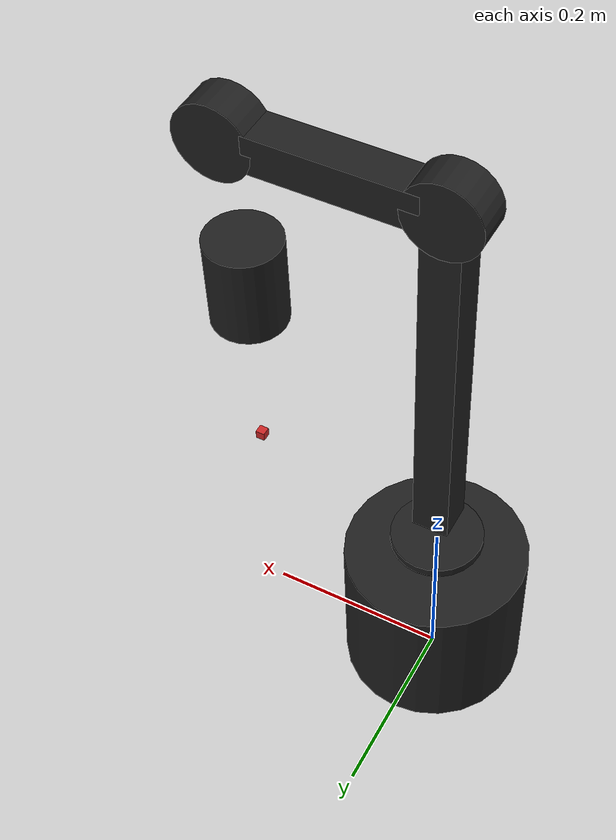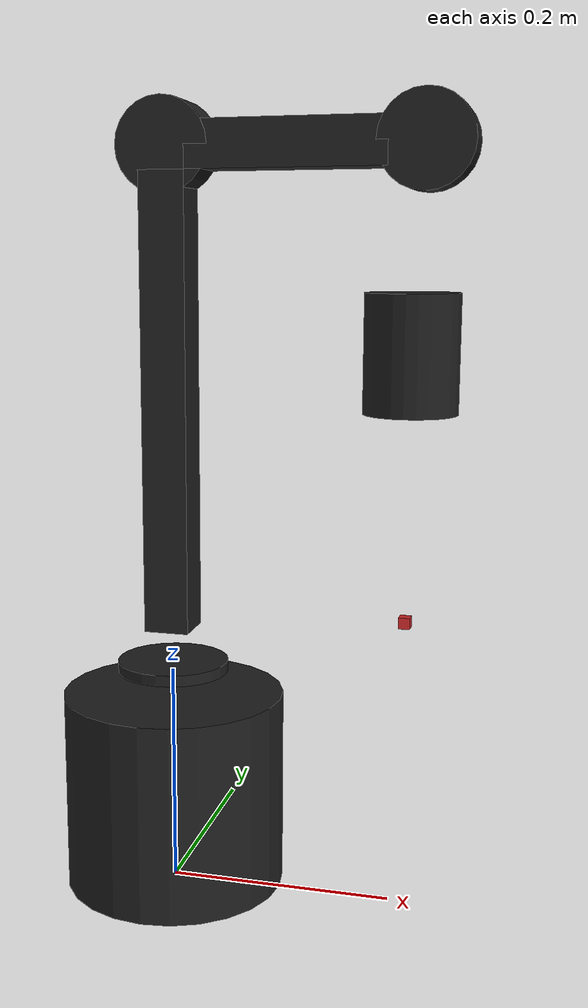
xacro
<?xml version="1.0"?>
<!-- proxygen Chain -->
<robot name="proxygen" xmlns:xacro="http://ros.org/wiki/xacro">

  <!-- Import Rviz colors -->
  <xacro:include filename="$(find proxygen_description)/urdf/materials.xacro" />

  <!-- Import all Gazebo-customization elements, including Gazebo colors -->
  <xacro:include filename="$(find proxygen_description)/urdf/proxygen.gazebo.xacro" />

  <!-- Import Transmission -->
  <xacro:include filename="$(find proxygen_description)/urdf/proxygen.transmission.xacro" />

  <!-- Import URDF -->
  <xacro:include filename="$(find proxygen_description)/urdf/gridbot.urdf.xacro" />

  <!-- World -->
  <link name="world"/>

  <!-- World fixed joint-->
  <joint name="world_fixed" type="fixed">
    <origin xyz="0 0 0" rpy="0 0 0"/>
    <parent link="world"/>
    <child link="link1"/>
  </joint>

</robot>

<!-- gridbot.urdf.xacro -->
<!-- Open_Manipulator Chain -->
<robot xmlns:xacro="http://ros.org/wiki/xacro">

  <xacro:macro name="Supp_Link" params="link_number x y z">
    <link name="supp_link${link_number}">
      <visual>
        <origin xyz="0 0 0" rpy="-1.57 0 0"/>
        <geometry>
          <cylinder radius="0.04" length="0.04"/>
        </geometry>
      </visual>
      <inertial>
        <origin xyz="0 0 0" />
        <mass value="9.8406837e-03" />
        <inertia ixx="3.4543422e-06" ixy="-1.6031095e-07" ixz="-3.8375155e-08"
                 iyy="3.2689329e-06"  iyz="2.8511935e-07"
                 izz="1.8850320e-06" />
      </inertial>
    </link>
    <joint name="supp_joint${link_number}" type="fixed">
      <parent link="link${link_number}"/>
      <child link="supp_link${link_number}"/>
      <origin xyz="${x} ${y} ${z}" rpy="0 0 0"/>
    </joint>
  </xacro:macro>

  <!-- Link 1 -->
  <link name="link1">
    <visual>
      <origin xyz="0.0 0.0 0.090" rpy="0 0 0"/>
      <geometry>
        <cylinder radius="0.10" length="0.180"/>
      </geometry>
      <material name="black"/>
    </visual>

    <collision>
      <origin xyz="0.0 0.0 0.090" rpy="0 0 0"/>
      <geometry>
        <box size="0.240 0.340 0.180"/>
      </geometry>
    </collision>

    <inertial>
      <origin xyz="3.0876154e-04 0.0000000e+00 -1.2176461e-04" />
      <mass value="7.9119962e-02" />
      <inertia ixx="1.2505234e-05" ixy="0.0" ixz="-1.7855208e-07"
               iyy="2.1898364e-05" iyz="0.0"
               izz="1.9267361e-05" />
    </inertial>
  </link>

  <!-- Joint 1 -->
  <joint name="joint1" type="revolute">
    <parent link="link1"/>
    <child link="link2"/>
    <origin xyz="0.0 0.0 0.200" rpy="0 0 0"/>
    <axis xyz="0 0 1"/>
    <limit velocity="4.8" effort="1" lower="${-pi*0.9}" upper="${pi*0.9}"/>
  </joint>

  <!--  Link 2 -->
  <link name="link2">
    <visual>
      <origin xyz="0 0 0.005" rpy="0 0 0"/>
      <geometry>
        <cylinder radius="0.050" length="0.010"/>
      </geometry>
      <material name="black"/>
    </visual>

    <collision>
      <origin xyz="0 0 0.005" rpy="0 0 0"/>
      <geometry>
        <cylinder radius="0.050" length="0.010"/>
      </geometry>
    </collision>

    <inertial>
      <origin xyz="-3.0184870e-04 5.4043684e-04 ${0.018 + 2.9433464e-02}" />
      <mass value="9.8406837e-02" />
      <inertia ixx="3.4543422e-05" ixy="-1.6031095e-08" ixz="-3.8375155e-07"
               iyy="3.2689329e-05" iyz="2.8511935e-08"
               izz="1.8850320e-05" />
    </inertial>
  </link>

  <!--  Joint 2 -->
  <joint name="joint2" type="revolute">
    <parent link="link2"/>
    <child link="link3"/>
    <origin xyz="0.0 0.0 0.040" rpy="0 0 0"/>
    <axis xyz="0 1 0"/>
    <limit velocity="4.8" effort="1" lower="${-pi/2}" upper="${0.3}" />
  </joint>

  <xacro:Supp_Link link_number="3" x="0" y="0" z="0.420"/>

  <!--  Link 3 -->
  <link name="link3">
    <visual>
      <origin xyz="0 0 0.200" rpy="0 0 0"/>
      <geometry>
        <box size="0.040 0.040 0.400"/>
      </geometry>
      <material name="black"/>
    </visual>

    <collision>
      <origin xyz="0 0 0.200" rpy="0 0 0"/>
      <geometry>
        <box size="0.040 0.040 0.400"/>
      </geometry>
    </collision>

    <inertial>
      <origin xyz="1.0308393e-02 3.7743363e-04 1.0170197e-01" />
      <mass value="1.3850917e-01" />
      <inertia ixx="3.3055381e-04" ixy="-9.7940978e-08" ixz="-3.8505711e-05"
               iyy="3.4290447e-04" iyz="-1.5717516e-06"
               izz="6.0346498e-05" />
    </inertial>
  </link>

  <!--  Joint 3 -->
  <joint name="joint3" type="revolute">
    <parent link="link3"/>
    <child link="link4"/>
    <origin xyz="0.0 0.0 0.420" rpy="0 0 0"/>
    <axis xyz="0 1 0"/>
    <limit velocity="4.8" effort="1" lower="${-pi*0.3}" upper="${pi*0.44}" />
  </joint>

  <xacro:Supp_Link link_number="4" x="0.220" y="0" z="0"/>

  <!--  Link 4 -->
  <link name="link4">
    <visual>
      <origin xyz="0.105 0 0" rpy="0 0 0"/>
      <geometry>
        <box size="0.170 0.040 0.040"/>
      </geometry>
      <material name="black"/>
    </visual>

    <collision>
      <origin xyz="0.105 0 0" rpy="0 0 0"/>
      <geometry>
        <box size="0.170 0.040 0.040"/>
      </geometry>
    </collision>

    <inertial>
      <origin xyz="9.0909590e-02 3.8929816e-04 2.2413279e-04" />
      <mass value="1.3274562e-01" />
      <inertia ixx="3.0654178e-05" ixy="-1.2764155e-06" ixz="-2.6874417e-07"
               iyy="2.4230292e-04" iyz="1.1559550e-08"
               izz="2.5155057e-04" />
    </inertial>
  </link>

  <!--  Joint 4 -->
  <joint name="joint4" type="revolute">
    <parent link="link4"/>
    <child link="link5"/>
    <origin xyz="0.210 0.0 0.0" rpy="0 0 0"/>
    <axis xyz="0 1 0"/>
    <limit velocity="4.8" effort="1" lower="${-pi*0.57}" upper="${pi*0.65}" />
  </joint>

  <!--  Link 5 -->
  <link name="link5">
    <visual>
      <origin xyz="0 0 -0.170" rpy="0 0 0"/>
      <geometry>
        <cylinder radius="0.040" length="0.100"/>
      </geometry>
      <material name="black"/>
    </visual>

    <collision>
      <origin xyz="0 0 -0.170" rpy="0 0 0"/>
      <geometry>
        <box size="0.040 0.040 0.300"/>
      </geometry>
    </collision>

    <inertial>
      <origin xyz="4.4206755e-02 3.6839985e-07 8.9142216e-03" />
      <mass value="1.4327573e-01" />
      <inertia ixx="8.0870749e-05" ixy="0.0" ixz="-1.0157896e-06"
               iyy="7.5980465e-05" iyz="0.0"
               izz="9.3127351e-05" />
    </inertial>
  </link>

  <!-- end effector joint -->
  <joint name="end_effector_joint" type="continuous">
    <origin xyz="0.0 0.0 -0.400" rpy="0 0 0"/>
    <parent link="link5"/>
    <child link="end_effector_link"/>
    <axis xyz="0 0 1"/>
    <limit velocity="1" effort="0.1" />
  </joint>

  <!-- end effector link -->
  <link name="end_effector_link">
    <visual>
      <origin xyz="0 0 0" rpy="0 0 0"/>
      <geometry>
        <box size="0.01 0.01 0.01"/>
      </geometry>
      <material name="red"/>
     </visual>

    <inertial>
      <origin xyz="0 0 0" />
      <mass value="1.0e-03" />
      <inertia ixx="1.0e-03" ixy="0.0" ixz="0.0"
               iyy="1.0e-03" iyz="0.0"
               izz="1.0e-03" />
    </inertial>
  </link>

</robot>
